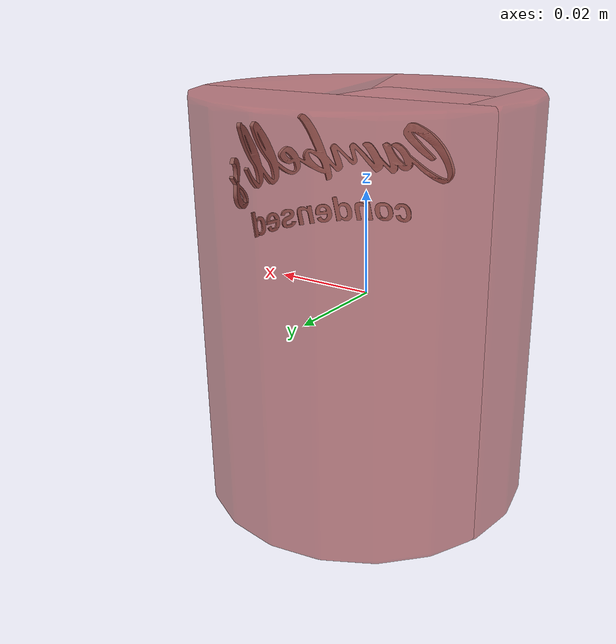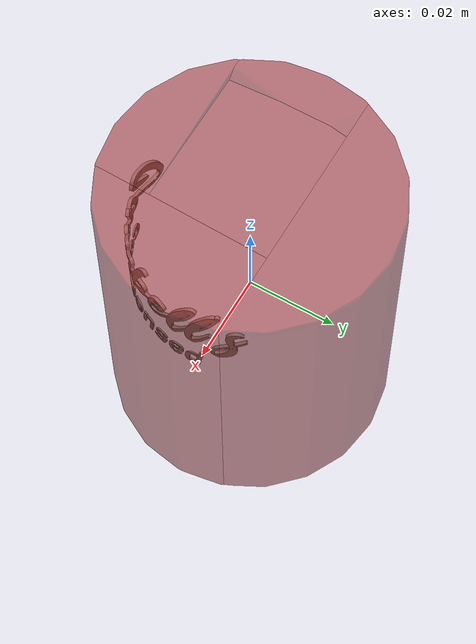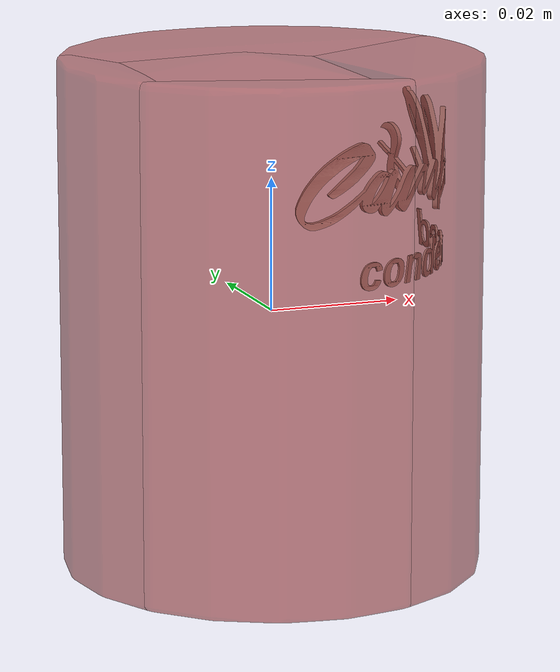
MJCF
<?xml version='1.0' encoding='utf-8'?>
<mujoco model="more_canned_food_16">
  <asset>
    <mesh file="visual/model_normalized_0.obj" name="model_normalized_0_vis" scale="0.07649999999999997 0.07649999999999997 0.07649999999999997" refquat="1.0 0.0 0.0 0.0" />
    <texture type="2d" name="image0" file="visual/image0.png" />
    <material name="lambert1.001" texture="image0" specular="0.5" shininess="0.25" />
    <mesh file="collision/collision_mesh_collision_0.obj" name="canned_collision_mesh_0" scale="0.07649999999999997 0.07649999999999997 0.07649999999999997" refquat="1.0 0.0 0.0 0.0" />
    <mesh file="collision/collision_mesh_collision_1.obj" name="canned_collision_mesh_1" scale="0.07649999999999997 0.07649999999999997 0.07649999999999997" refquat="1.0 0.0 0.0 0.0" />
    <mesh file="collision/collision_mesh_collision_2.obj" name="canned_collision_mesh_2" scale="0.07649999999999997 0.07649999999999997 0.07649999999999997" refquat="1.0 0.0 0.0 0.0" />
    <mesh file="collision/collision_mesh_collision_3.obj" name="canned_collision_mesh_3" scale="0.07649999999999997 0.07649999999999997 0.07649999999999997" refquat="1.0 0.0 0.0 0.0" />
    <mesh file="collision/collision_mesh_collision_4.obj" name="canned_collision_mesh_4" scale="0.07649999999999997 0.07649999999999997 0.07649999999999997" refquat="1.0 0.0 0.0 0.0" />
  </asset>
  <default>
    <default class="region">
      <geom group="1" conaffinity="0" contype="0" rgba="0 1 0 0" mass="0" />
    </default>
    <default class="collision">
      <geom group="0" rgba="0.5 0 0 0.5" density="1199.404247303" />
    </default>
  </default>
  <worldbody>
    <body>
      <body name="object">
        <geom solimp="0.998 0.998 0.001" solref="0.001 1" density="119.940424730" friction="0.95 0.3 0.1" type="mesh" mesh="model_normalized_0_vis" conaffinity="0" contype="0" group="1" material="lambert1.001" />
        <geom class="region" name="reg_bbox" type="box" pos="1.1475000015193079e-09 0.0 -3.7848375000016075e-06" size="0.031457862202499985 0.03145787941499999 0.03866696669249998" />
        <geom mesh="canned_collision_mesh_0" type="mesh" class="collision" />
        <geom mesh="canned_collision_mesh_1" type="mesh" class="collision" />
        <geom mesh="canned_collision_mesh_2" type="mesh" class="collision" />
        <geom mesh="canned_collision_mesh_3" type="mesh" class="collision" />
        <geom mesh="canned_collision_mesh_4" type="mesh" class="collision" />
      </body>
    </body>
  </worldbody>
</mujoco>
